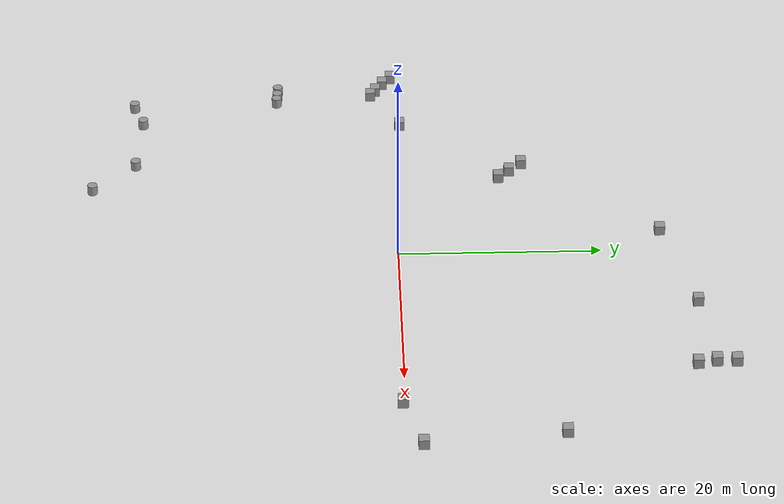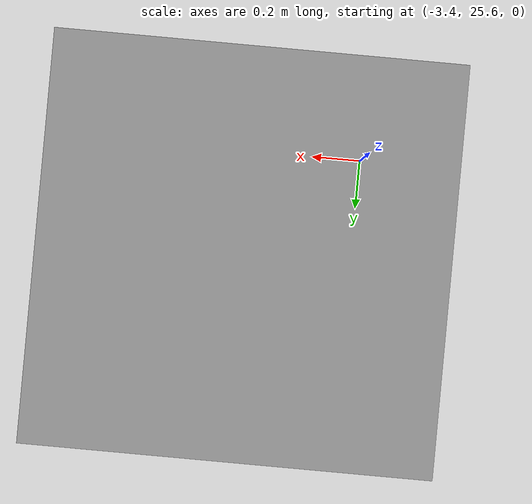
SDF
<sdf version="1.4">
 <world name="default">
  <scene>
   <sky><clouds><speed>12</speed></clouds></sky>
   <ambient>1.0 1.0 1.0 1.0</ambient>
   <shadows>false</shadows>
  </scene>
  <include><uri>model://urdf/models/sun</uri></include>
  <physics type="ode">
   <max_step_size>0.0025</max_step_size>
   <real_time_factor>0</real_time_factor>
   <real_time_update_rate>1000</real_time_update_rate>
   <gravity>0 0 -9.8</gravity>
  </physics>
  <model name="unit_box">
   <pose>24.0285 -0.217301 0.5 0 -0 0</pose>
   <link name="link">
    <inertial>
     <mass>1</mass>
     <inertia>
      <ixx>0.166667</ixx>
      <ixy>0</ixy>
      <ixz>0</ixz>
      <iyy>0.166667</iyy>
      <iyz>0</iyz>
      <izz>0.166667</izz>
     </inertia>
    </inertial>
    <collision name="collision"><geometry><box><size>1 1 1</size></box></geometry></collision>
    <visual name="visual">
     <geometry><box><size>1 1 1</size></box></geometry>
     <material>
      <script><name>Gazebo/Grey</name><uri>file://media/materials/scripts/gazebo.material</uri></script>
     </material>
    </visual>
   </link>
  </model>
  <model name="unit_box_0">
   <pose>30.1684 1.48516 0.5 0 -0 0</pose>
   <link name="link">
    <inertial>
     <mass>1</mass>
     <inertia>
      <ixx>0.166667</ixx>
      <ixy>0</ixy>
      <ixz>0</ixz>
      <iyy>0.166667</iyy>
      <iyz>0</iyz>
      <izz>0.166667</izz>
     </inertia>
    </inertial>
    <collision name="collision"><geometry><box><size>1 1 1</size></box></geometry></collision>
    <visual name="visual">
     <geometry><box><size>1 1 1</size></box></geometry>
     <material>
      <script><name>Gazebo/Grey</name><uri>file://media/materials/scripts/gazebo.material</uri></script>
     </material>
    </visual>
   </link>
  </model>
  <model name="unit_box_1">
   <pose>28.8252 14.6816 0.5 0 -0 0</pose>
   <link name="link">
    <inertial>
     <mass>1</mass>
     <inertia>
      <ixx>0.166667</ixx>
      <ixy>0</ixy>
      <ixz>0</ixz>
      <iyy>0.166667</iyy>
      <iyz>0</iyz>
      <izz>0.166667</izz>
     </inertia>
    </inertial>
    <collision name="collision"><geometry><box><size>1 1 1</size></box></geometry></collision>
    <visual name="visual">
     <geometry><box><size>1 1 1</size></box></geometry>
     <material>
      <script><name>Gazebo/Grey</name><uri>file://media/materials/scripts/gazebo.material</uri></script>
     </material>
    </visual>
   </link>
  </model>
  <model name="unit_box_2">
   <pose>18.8858 27.6648 0.5 0 -0 0</pose>
   <link name="link">
    <inertial>
     <mass>1</mass>
     <inertia>
      <ixx>0.166667</ixx>
      <ixy>0</ixy>
      <ixz>0</ixz>
      <iyy>0.166667</iyy>
      <iyz>0</iyz>
      <izz>0.166667</izz>
     </inertia>
    </inertial>
    <collision name="collision"><geometry><box><size>1 1 1</size></box></geometry></collision>
    <visual name="visual">
     <geometry><box><size>1 1 1</size></box></geometry>
     <material>
      <script><name>Gazebo/Grey</name><uri>file://media/materials/scripts/gazebo.material</uri></script>
     </material>
    </visual>
   </link>
  </model>
  <model name="unit_box_3">
   <pose>18.6276 31.3367 0.5 0 -0 0</pose>
   <link name="link">
    <inertial>
     <mass>1</mass>
     <inertia>
      <ixx>0.166667</ixx>
      <ixy>0</ixy>
      <ixz>0</ixz>
      <iyy>0.166667</iyy>
      <iyz>0</iyz>
      <izz>0.166667</izz>
     </inertia>
    </inertial>
    <collision name="collision"><geometry><box><size>1 1 1</size></box></geometry></collision>
    <visual name="visual">
     <geometry><box><size>1 1 1</size></box></geometry>
     <material>
      <script><name>Gazebo/Grey</name><uri>file://media/materials/scripts/gazebo.material</uri></script>
     </material>
    </visual>
   </link>
  </model>
  <model name="unit_box_4">
   <pose>9.04714 28.6652 0.5 0 -0 0</pose>
   <link name="link">
    <inertial>
     <mass>1</mass>
     <inertia>
      <ixx>0.166667</ixx>
      <ixy>0</ixy>
      <ixz>0</ixz>
      <iyy>0.166667</iyy>
      <iyz>0</iyz>
      <izz>0.166667</izz>
     </inertia>
    </inertial>
    <collision name="collision"><geometry><box><size>1 1 1</size></box></geometry></collision>
    <visual name="visual">
     <geometry><box><size>1 1 1</size></box></geometry>
     <material>
      <script><name>Gazebo/Grey</name><uri>file://media/materials/scripts/gazebo.material</uri></script>
     </material>
    </visual>
   </link>
  </model>
  <model name="unit_box_5">
   <pose>18.5465 29.467 0.5 0 -0 0</pose>
   <link name="link">
    <inertial>
     <mass>1</mass>
     <inertia>
      <ixx>0.166667</ixx>
      <ixy>0</ixy>
      <ixz>0</ixz>
      <iyy>0.166667</iyy>
      <iyz>0</iyz>
      <izz>0.166667</izz>
     </inertia>
    </inertial>
    <collision name="collision"><geometry><box><size>1 1 1</size></box></geometry></collision>
    <visual name="visual">
     <geometry><box><size>1 1 1</size></box></geometry>
     <material>
      <script><name>Gazebo/Grey</name><uri>file://media/materials/scripts/gazebo.material</uri></script>
     </material>
    </visual>
   </link>
  </model>
  <model name="unit_box_6">
   <pose>-2.94948 26.034 0.5 0 -0 0</pose>
   <link name="link">
    <inertial>
     <mass>1</mass>
     <inertia>
      <ixx>0.166667</ixx>
      <ixy>0</ixy>
      <ixz>0</ixz>
      <iyy>0.166667</iyy>
      <iyz>0</iyz>
      <izz>0.166667</izz>
     </inertia>
    </inertial>
    <collision name="collision"><geometry><box><size>1 1 1</size></box></geometry></collision>
    <visual name="visual">
     <geometry><box><size>1 1 1</size></box></geometry>
     <material>
      <script><name>Gazebo/Grey</name><uri>file://media/materials/scripts/gazebo.material</uri></script>
     </material>
    </visual>
   </link>
  </model>
  <model name="unit_box_7">
   <pose>-15.1341 12.9472 0.5 0 -0 0</pose>
   <link name="link">
    <inertial>
     <mass>1</mass>
     <inertia>
      <ixx>0.166667</ixx>
      <ixy>0</ixy>
      <ixz>0</ixz>
      <iyy>0.166667</iyy>
      <iyz>0</iyz>
      <izz>0.166667</izz>
     </inertia>
    </inertial>
    <collision name="collision"><geometry><box><size>1 1 1</size></box></geometry></collision>
    <visual name="visual">
     <geometry><box><size>1 1 1</size></box></geometry>
     <material>
      <script><name>Gazebo/Grey</name><uri>file://media/materials/scripts/gazebo.material</uri></script>
     </material>
    </visual>
   </link>
  </model>
  <model name="unit_box_8">
   <pose>-13.8393 11.6488 0.5 0 -0 0</pose>
   <link name="link">
    <inertial>
     <mass>1</mass>
     <inertia>
      <ixx>0.166667</ixx>
      <ixy>0</ixy>
      <ixz>0</ixz>
      <iyy>0.166667</iyy>
      <iyz>0</iyz>
      <izz>0.166667</izz>
     </inertia>
    </inertial>
    <collision name="collision"><geometry><box><size>1 1 1</size></box></geometry></collision>
    <visual name="visual">
     <geometry><box><size>1 1 1</size></box></geometry>
     <material>
      <script><name>Gazebo/Grey</name><uri>file://media/materials/scripts/gazebo.material</uri></script>
     </material>
    </visual>
   </link>
  </model>
  <model name="unit_box_9">
   <pose>-12.6605 10.4933 0.5 0 -0 0</pose>
   <link name="link">
    <inertial>
     <mass>1</mass>
     <inertia>
      <ixx>0.166667</ixx>
      <ixy>0</ixy>
      <ixz>0</ixz>
      <iyy>0.166667</iyy>
      <iyz>0</iyz>
      <izz>0.166667</izz>
     </inertia>
    </inertial>
    <collision name="collision"><geometry><box><size>1 1 1</size></box></geometry></collision>
    <visual name="visual">
     <geometry><box><size>1 1 1</size></box></geometry>
     <material>
      <script><name>Gazebo/Grey</name><uri>file://media/materials/scripts/gazebo.material</uri></script>
     </material>
    </visual>
   </link>
  </model>
  <model name="unit_cylinder">
   <pose>-27.2372 -12.0342 0.5 0 -0 0</pose>
   <link name="link">
    <inertial>
     <mass>1</mass>
     <inertia><ixx>0.145833</ixx><ixy>0</ixy><ixz>0</ixz><iyy>0.145833</iyy><iyz>0</iyz><izz>0.125</izz></inertia>
    </inertial>
    <collision name="collision">
     <geometry><cylinder><radius>0.5</radius><length>1</length></cylinder></geometry>
    </collision>
    <visual name="visual">
     <geometry><cylinder><radius>0.5</radius><length>1</length></cylinder></geometry>
     <material>
      <script><name>Gazebo/Grey</name><uri>file://media/materials/scripts/gazebo.material</uri></script>
     </material>
    </visual>
   </link>
  </model>
  <model name="unit_cylinder_0">
   <pose>-28.1858 -11.9723 0.5 0 -0 0</pose>
   <link name="link">
    <inertial>
     <mass>1</mass>
     <inertia><ixx>0.145833</ixx><ixy>0</ixy><ixz>0</ixz><iyy>0.145833</iyy><iyz>0</iyz><izz>0.125</izz></inertia>
    </inertial>
    <collision name="collision">
     <geometry><cylinder><radius>0.5</radius><length>1</length></cylinder></geometry>
    </collision>
    <visual name="visual">
     <geometry><cylinder><radius>0.5</radius><length>1</length></cylinder></geometry>
     <material>
      <script><name>Gazebo/Grey</name><uri>file://media/materials/scripts/gazebo.material</uri></script>
     </material>
    </visual>
   </link>
  </model>
  <model name="unit_cylinder_1">
   <pose>-29.3387 -11.9241 0.5 0 -0 0</pose>
   <link name="link">
    <inertial>
     <mass>1</mass>
     <inertia><ixx>0.145833</ixx><ixy>0</ixy><ixz>0</ixz><iyy>0.145833</iyy><iyz>0</iyz><izz>0.125</izz></inertia>
    </inertial>
    <collision name="collision">
     <geometry><cylinder><radius>0.5</radius><length>1</length></cylinder></geometry>
    </collision>
    <visual name="visual">
     <geometry><cylinder><radius>0.5</radius><length>1</length></cylinder></geometry>
     <material>
      <script><name>Gazebo/Grey</name><uri>file://media/materials/scripts/gazebo.material</uri></script>
     </material>
    </visual>
   </link>
  </model>
  <model name="unit_cylinder_2">
   <pose>-26.6621 -26.8904 0.5 0 -0 0</pose>
   <link name="link">
    <inertial>
     <mass>1</mass>
     <inertia><ixx>0.145833</ixx><ixy>0</ixy><ixz>0</ixz><iyy>0.145833</iyy><iyz>0</iyz><izz>0.125</izz></inertia>
    </inertial>
    <collision name="collision">
     <geometry><cylinder><radius>0.5</radius><length>1</length></cylinder></geometry>
    </collision>
    <visual name="visual">
     <geometry><cylinder><radius>0.5</radius><length>1</length></cylinder></geometry>
     <material>
      <script><name>Gazebo/Grey</name><uri>file://media/materials/scripts/gazebo.material</uri></script>
     </material>
    </visual>
   </link>
  </model>
  <model name="unit_cylinder_3">
   <pose>-23.4809 -25.9018 0.5 0 -0 0</pose>
   <link name="link">
    <inertial>
     <mass>1</mass>
     <inertia><ixx>0.145833</ixx><ixy>0</ixy><ixz>0</ixz><iyy>0.145833</iyy><iyz>0</iyz><izz>0.125</izz></inertia>
    </inertial>
    <collision name="collision">
     <geometry><cylinder><radius>0.5</radius><length>1</length></cylinder></geometry>
    </collision>
    <visual name="visual">
     <geometry><cylinder><radius>0.5</radius><length>1</length></cylinder></geometry>
     <material>
      <script><name>Gazebo/Grey</name><uri>file://media/materials/scripts/gazebo.material</uri></script>
     </material>
    </visual>
   </link>
  </model>
  <model name="unit_cylinder_4">
   <pose>-15.8288 -26.3927 0.5 0 -0 0</pose>
   <link name="link">
    <inertial>
     <mass>1</mass>
     <inertia><ixx>0.145833</ixx><ixy>0</ixy><ixz>0</ixz><iyy>0.145833</iyy><iyz>0</iyz><izz>0.125</izz></inertia>
    </inertial>
    <collision name="collision">
     <geometry><cylinder><radius>0.5</radius><length>1</length></cylinder></geometry>
    </collision>
    <visual name="visual">
     <geometry><cylinder><radius>0.5</radius><length>1</length></cylinder></geometry>
     <material>
      <script><name>Gazebo/Grey</name><uri>file://media/materials/scripts/gazebo.material</uri></script>
     </material>
    </visual>
   </link>
  </model>
  <model name="unit_cylinder_5">
   <pose>-11.489 -30.5994 0.5 0 -0 0</pose>
   <link name="link">
    <inertial>
     <mass>1</mass>
     <inertia><ixx>0.145833</ixx><ixy>0</ixy><ixz>0</ixz><iyy>0.145833</iyy><iyz>0</iyz><izz>0.125</izz></inertia>
    </inertial>
    <collision name="collision">
     <geometry><cylinder><radius>0.5</radius><length>1</length></cylinder></geometry>
    </collision>
    <visual name="visual">
     <geometry><cylinder><radius>0.5</radius><length>1</length></cylinder></geometry>
     <material>
      <script><name>Gazebo/Grey</name><uri>file://media/materials/scripts/gazebo.material</uri></script>
     </material>
    </visual>
   </link>
  </model>
  <model name="unit_box_10">
   <pose>-22.6256 0.732576 0.5 0 -0 0</pose>
   <link name="link">
    <inertial>
     <mass>1</mass>
     <inertia>
      <ixx>0.166667</ixx>
      <ixy>0</ixy>
      <ixz>0</ixz>
      <iyy>0.166667</iyy>
      <iyz>0</iyz>
      <izz>0.166667</izz>
     </inertia>
    </inertial>
    <collision name="collision"><geometry><box><size>1 1 1</size></box></geometry></collision>
    <visual name="visual">
     <geometry><box><size>1 1 1</size></box></geometry>
     <material>
      <script><name>Gazebo/Grey</name><uri>file://media/materials/scripts/gazebo.material</uri></script>
     </material>
    </visual>
   </link>
  </model>
  <model name="unit_box_11">
   <pose>-31.6964 -0.052409 0.5 0 -0 0</pose>
   <link name="link">
    <inertial>
     <mass>1</mass>
     <inertia>
      <ixx>0.166667</ixx>
      <ixy>0</ixy>
      <ixz>0</ixz>
      <iyy>0.166667</iyy>
      <iyz>0</iyz>
      <izz>0.166667</izz>
     </inertia>
    </inertial>
    <collision name="collision"><geometry><box><size>1 1 1</size></box></geometry></collision>
    <visual name="visual">
     <geometry><box><size>1 1 1</size></box></geometry>
     <material>
      <script><name>Gazebo/Grey</name><uri>file://media/materials/scripts/gazebo.material</uri></script>
     </material>
    </visual>
   </link>
  </model>
  <model name="unit_box_12">
   <pose>-30.577 -0.911043 0.5 0 -0 0</pose>
   <link name="link">
    <inertial>
     <mass>1</mass>
     <inertia>
      <ixx>0.166667</ixx>
      <ixy>0</ixy>
      <ixz>0</ixz>
      <iyy>0.166667</iyy>
      <iyz>0</iyz>
      <izz>0.166667</izz>
     </inertia>
    </inertial>
    <collision name="collision"><geometry><box><size>1 1 1</size></box></geometry></collision>
    <visual name="visual">
     <geometry><box><size>1 1 1</size></box></geometry>
     <material>
      <script><name>Gazebo/Grey</name><uri>file://media/materials/scripts/gazebo.material</uri></script>
     </material>
    </visual>
   </link>
  </model>
  <model name="unit_box_13">
   <pose>-29.2445 -1.66814 0.5 0 -0 0</pose>
   <link name="link">
    <inertial>
     <mass>1</mass>
     <inertia>
      <ixx>0.166667</ixx>
      <ixy>0</ixy>
      <ixz>0</ixz>
      <iyy>0.166667</iyy>
      <iyz>0</iyz>
      <izz>0.166667</izz>
     </inertia>
    </inertial>
    <collision name="collision"><geometry><box><size>1 1 1</size></box></geometry></collision>
    <visual name="visual">
     <geometry><box><size>1 1 1</size></box></geometry>
     <material>
      <script><name>Gazebo/Grey</name><uri>file://media/materials/scripts/gazebo.material</uri></script>
     </material>
    </visual>
   </link>
  </model>
  <model name="unit_box_14">
   <pose>-28.3677 -2.16835 0.5 0 -0 0</pose>
   <link name="link">
    <inertial>
     <mass>1</mass>
     <inertia>
      <ixx>0.166667</ixx>
      <ixy>0</ixy>
      <ixz>0</ixz>
      <iyy>0.166667</iyy>
      <iyz>0</iyz>
      <izz>0.166667</izz>
     </inertia>
    </inertial>
    <collision name="collision"><geometry><box><size>1 1 1</size></box></geometry></collision>
    <visual name="visual">
     <geometry><box><size>1 1 1</size></box></geometry>
     <material>
      <script><name>Gazebo/Grey</name><uri>file://media/materials/scripts/gazebo.material</uri></script>
     </material>
    </visual>
   </link>
  </model>
 </world>
</sdf>
